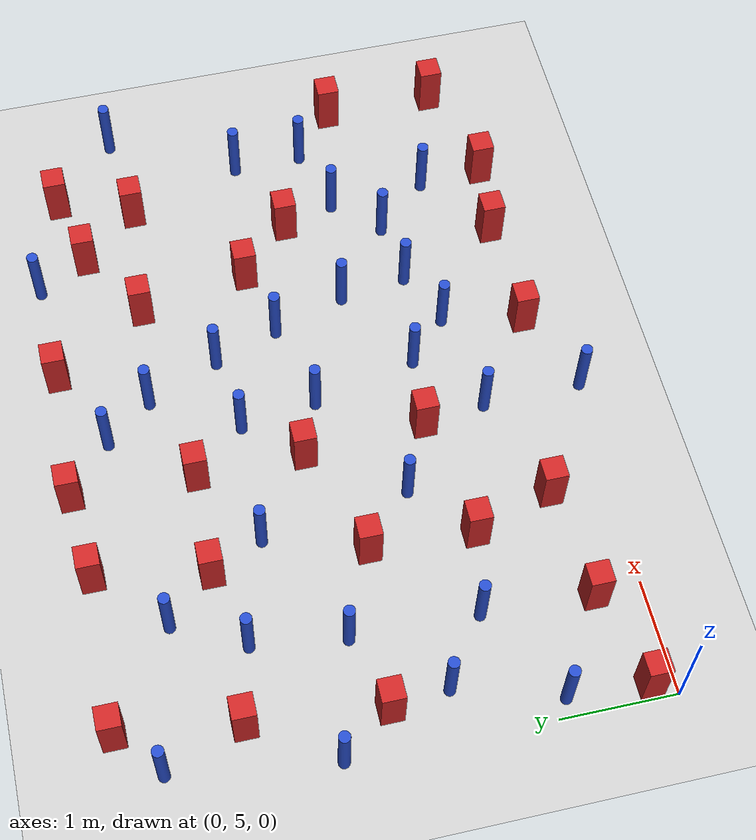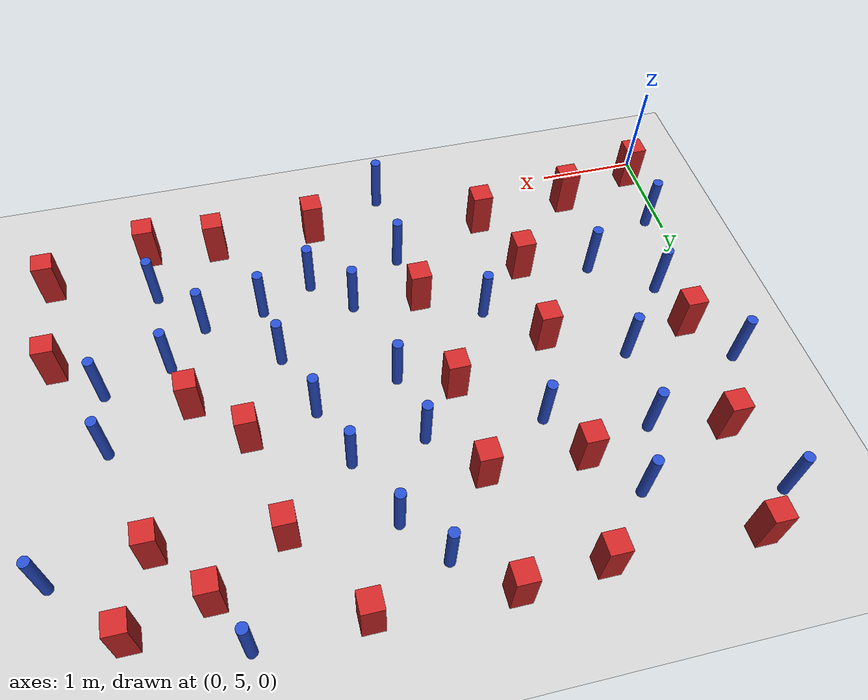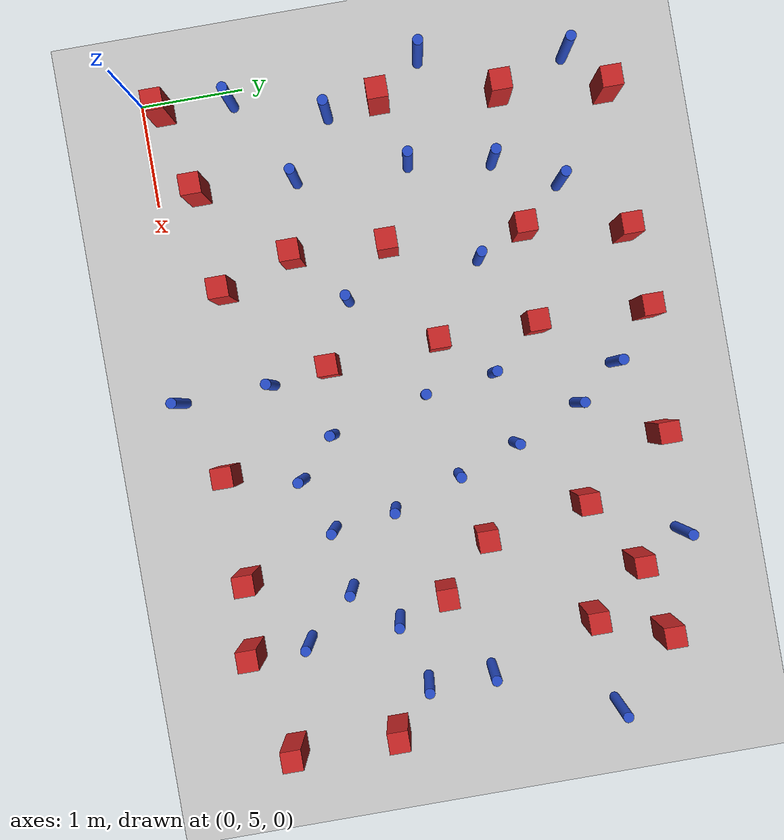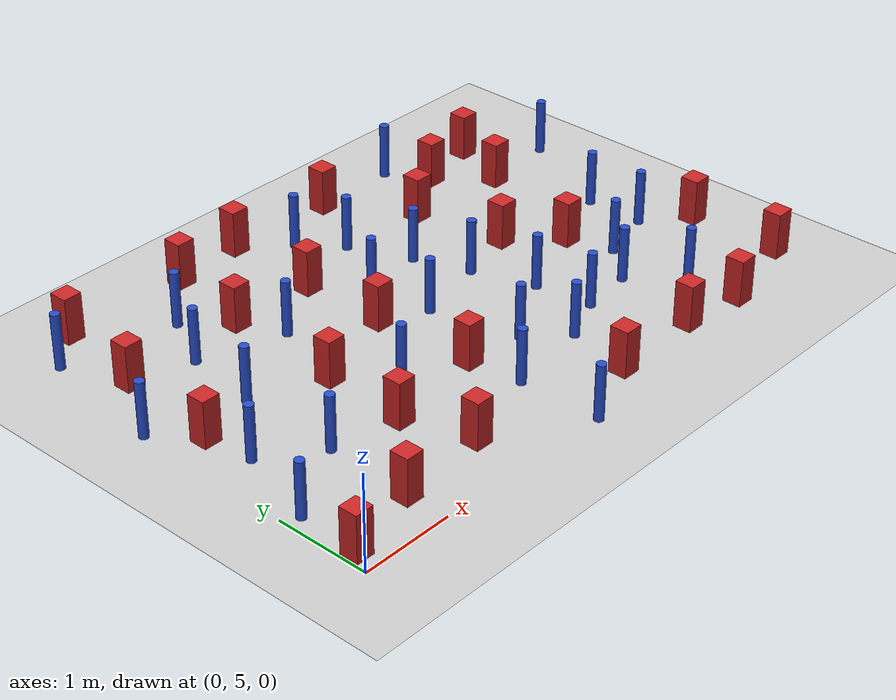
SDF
<sdf version="1.6">
 <world name="default">
  <model name="ground_plane">
   <static>1</static>
   <link name="link">
    <collision name="collision">
     <geometry><plane><normal>0 0 1</normal><size>100 100</size></plane></geometry>
     <surface><friction><ode><mu>100</mu><mu2>50</mu2></ode></friction></surface>
    </collision>
    <visual name="visual">
     <cast_shadows>0</cast_shadows>
     <geometry><plane><normal>0 0 1</normal><size>100 100</size></plane></geometry>
     <material>
      <ambient>1.0 1.0 1.0 1.0</ambient>
      <diffuse>0.8 0.8 0.8 1.0</diffuse>
      <specular>0.01 0.01 0.01 1.000000</specular>
     </material>
    </visual>
   </link>
  </model>
  <model name="pole_obstacle0">
   <static>true</static>
   <pose>2.91769429393 5.82712478604 -9.47619616065e-06 5.49618799738e-07 2.3631041406e-07 -1.55090534801e-07</pose>
   <link name="link">
    <pose>0 0 0.3 0 -0 0</pose>
    <inertial>
     <mass>1</mass>
     <inertia><ixx>0.145833</ixx><ixy>0</ixy><ixz>0</ixz><iyy>0.145833</iyy><iyz>0</iyz><izz>0.125</izz></inertia>
    </inertial>
    <collision name="collision">
     <geometry><cylinder><radius>0.05</radius><length>.6</length></cylinder></geometry>
    </collision>
    <visual name="visual">
     <geometry><cylinder><radius>0.05</radius><length>.6</length></cylinder></geometry>
     <material>
      <script><name>Gazebo/Blue</name><uri>file://media/materials/scripts/gazebo.material</uri></script>
     </material>
    </visual>
   </link>
  </model>
  <model name="square_post_obstacle2">
   <static>true</static>
   <pose>0.630227751506 9.47049307353 -6.11067671241e-07 -5.50515727128e-06 -8.79689657224e-07 2.37013304536e-05</pose>
   <link name="link">
    <pose>0 0 0.25 0 -0 0</pose>
    <inertial>
     <mass>100</mass>
     <inertia>
      <ixx>0.166667</ixx>
      <ixy>0</ixy>
      <ixz>0</ixz>
      <iyy>0.166667</iyy>
      <iyz>0</iyz>
      <izz>0.166667</izz>
     </inertia>
    </inertial>
    <collision name="collision"><geometry><box><size>.2 .2 .5</size></box></geometry></collision>
    <visual name="visual">
     <geometry><box><size>.2 .2 .5</size></box></geometry>
     <material>
      <script><name>Gazebo/Red</name><uri>file://media/materials/scripts/gazebo.material</uri></script>
     </material>
    </visual>
   </link>
  </model>
  <model name="square_post_obstacle4">
   <static>true</static>
   <pose>2.00787090122 9.43019744974 -6.11067671241e-07 -5.50515727128e-06 -8.79689657224e-07 2.37013304536e-05</pose>
   <link name="link">
    <pose>0 0 0.25 0 -0 0</pose>
    <inertial>
     <mass>100</mass>
     <inertia>
      <ixx>0.166667</ixx>
      <ixy>0</ixy>
      <ixz>0</ixz>
      <iyy>0.166667</iyy>
      <iyz>0</iyz>
      <izz>0.166667</izz>
     </inertia>
    </inertial>
    <collision name="collision"><geometry><box><size>.2 .2 .5</size></box></geometry></collision>
    <visual name="visual">
     <geometry><box><size>.2 .2 .5</size></box></geometry>
     <material>
      <script><name>Gazebo/Red</name><uri>file://media/materials/scripts/gazebo.material</uri></script>
     </material>
    </visual>
   </link>
  </model>
  <model name="square_post_obstacle6">
   <static>true</static>
   <pose>0.12175120665 5.21312354501 -6.11067671241e-07 -5.50515727128e-06 -8.79689657224e-07 2.37013304536e-05</pose>
   <link name="link">
    <pose>0 0 0.25 0 -0 0</pose>
    <inertial>
     <mass>100</mass>
     <inertia>
      <ixx>0.166667</ixx>
      <ixy>0</ixy>
      <ixz>0</ixz>
      <iyy>0.166667</iyy>
      <iyz>0</iyz>
      <izz>0.166667</izz>
     </inertia>
    </inertial>
    <collision name="collision"><geometry><box><size>.2 .2 .5</size></box></geometry></collision>
    <visual name="visual">
     <geometry><box><size>.2 .2 .5</size></box></geometry>
     <material>
      <script><name>Gazebo/Red</name><uri>file://media/materials/scripts/gazebo.material</uri></script>
     </material>
    </visual>
   </link>
  </model>
  <model name="pole_obstacle4">
   <static>true</static>
   <pose>3.25930367117 7.26666605015 -9.47619616065e-06 5.49618799738e-07 2.3631041406e-07 -1.55090534801e-07</pose>
   <link name="link">
    <pose>0 0 0.3 0 -0 0</pose>
    <inertial>
     <mass>1</mass>
     <inertia><ixx>0.145833</ixx><ixy>0</ixy><ixz>0</ixz><iyy>0.145833</iyy><iyz>0</iyz><izz>0.125</izz></inertia>
    </inertial>
    <collision name="collision">
     <geometry><cylinder><radius>0.05</radius><length>.6</length></cylinder></geometry>
    </collision>
    <visual name="visual">
     <geometry><cylinder><radius>0.05</radius><length>.6</length></cylinder></geometry>
     <material>
      <script><name>Gazebo/Blue</name><uri>file://media/materials/scripts/gazebo.material</uri></script>
     </material>
    </visual>
   </link>
  </model>
  <model name="pole_obstacle8">
   <static>true</static>
   <pose>3.57951586934 8.69045144701 -9.4761961606e-06 5.49618799729e-07 2.36310414e-07 -1.55090534824e-07</pose>
   <link name="link">
    <pose>0 0 0.3 0 -0 0</pose>
    <inertial>
     <mass>1</mass>
     <inertia><ixx>0.145833</ixx><ixy>0</ixy><ixz>0</ixz><iyy>0.145833</iyy><iyz>0</iyz><izz>0.125</izz></inertia>
    </inertial>
    <collision name="collision">
     <geometry><cylinder><radius>0.05</radius><length>.6</length></cylinder></geometry>
    </collision>
    <visual name="visual">
     <geometry><cylinder><radius>0.05</radius><length>.6</length></cylinder></geometry>
     <material>
      <script><name>Gazebo/Blue</name><uri>file://media/materials/scripts/gazebo.material</uri></script>
     </material>
    </visual>
   </link>
  </model>
  <model name="pole_obstacle15">
   <static>true</static>
   <pose>1.45612019845 8.88032884536 -9.47619616065e-06 5.49618799737e-07 2.36310414046e-07 -1.55090534809e-07</pose>
   <link name="link">
    <pose>0 0 0.3 0 -0 0</pose>
    <inertial>
     <mass>1</mass>
     <inertia><ixx>0.145833</ixx><ixy>0</ixy><ixz>0</ixz><iyy>0.145833</iyy><iyz>0</iyz><izz>0.125</izz></inertia>
    </inertial>
    <collision name="collision">
     <geometry><cylinder><radius>0.05</radius><length>.6</length></cylinder></geometry>
    </collision>
    <visual name="visual">
     <geometry><cylinder><radius>0.05</radius><length>.6</length></cylinder></geometry>
     <material>
      <script><name>Gazebo/Blue</name><uri>file://media/materials/scripts/gazebo.material</uri></script>
     </material>
    </visual>
   </link>
  </model>
  <model name="pole_obstacle17">
   <static>true</static>
   <pose>1.03093555033 7.47529446782 -9.47619616065e-06 5.49618799737e-07 2.36310414059e-07 -1.550905348e-07</pose>
   <link name="link">
    <pose>0 0 0.3 0 -0 0</pose>
    <inertial>
     <mass>1</mass>
     <inertia><ixx>0.145833</ixx><ixy>0</ixy><ixz>0</ixz><iyy>0.145833</iyy><iyz>0</iyz><izz>0.125</izz></inertia>
    </inertial>
    <collision name="collision">
     <geometry><cylinder><radius>0.05</radius><length>.6</length></cylinder></geometry>
    </collision>
    <visual name="visual">
     <geometry><cylinder><radius>0.05</radius><length>.6</length></cylinder></geometry>
     <material>
      <script><name>Gazebo/Blue</name><uri>file://media/materials/scripts/gazebo.material</uri></script>
     </material>
    </visual>
   </link>
  </model>
  <model name="pole_obstacle24">
   <static>true</static>
   <pose>5.33674350253 6.65957897446 -9.47619616065e-06 5.49618799737e-07 2.36310414037e-07 -1.55090534814e-07</pose>
   <link name="link">
    <pose>0 0 0.3 0 -0 0</pose>
    <inertial>
     <mass>1</mass>
     <inertia><ixx>0.145833</ixx><ixy>0</ixy><ixz>0</ixz><iyy>0.145833</iyy><iyz>0</iyz><izz>0.125</izz></inertia>
    </inertial>
    <collision name="collision">
     <geometry><cylinder><radius>0.05</radius><length>.6</length></cylinder></geometry>
    </collision>
    <visual name="visual">
     <geometry><cylinder><radius>0.05</radius><length>.6</length></cylinder></geometry>
     <material>
      <script><name>Gazebo/Blue</name><uri>file://media/materials/scripts/gazebo.material</uri></script>
     </material>
    </visual>
   </link>
  </model>
  <model name="pole_obstacle30">
   <static>true</static>
   <pose>2.94315081644 4.94244840659 -9.47619616065e-06 5.49618799738e-07 2.3631041406e-07 -1.55090534801e-07</pose>
   <link name="link">
    <pose>0 0 0.3 0 -0 0</pose>
    <inertial>
     <mass>1</mass>
     <inertia><ixx>0.145833</ixx><ixy>0</ixy><ixz>0</ixz><iyy>0.145833</iyy><iyz>0</iyz><izz>0.125</izz></inertia>
    </inertial>
    <collision name="collision">
     <geometry><cylinder><radius>0.05</radius><length>.6</length></cylinder></geometry>
    </collision>
    <visual name="visual">
     <geometry><cylinder><radius>0.05</radius><length>.6</length></cylinder></geometry>
     <material>
      <script><name>Gazebo/Blue</name><uri>file://media/materials/scripts/gazebo.material</uri></script>
     </material>
    </visual>
   </link>
  </model>
  <model name="pole_obstacle42">
   <static>true</static>
   <pose>2.23460327548 6.68603609018 -9.47619616065e-06 5.49618799738e-07 2.3631041406e-07 -1.55090534801e-07</pose>
   <link name="link">
    <pose>0 0 0.3 0 -0 0</pose>
    <inertial>
     <mass>1</mass>
     <inertia><ixx>0.145833</ixx><ixy>0</ixy><ixz>0</ixz><iyy>0.145833</iyy><iyz>0</iyz><izz>0.125</izz></inertia>
    </inertial>
    <collision name="collision">
     <geometry><cylinder><radius>0.05</radius><length>.6</length></cylinder></geometry>
    </collision>
    <visual name="visual">
     <geometry><cylinder><radius>0.05</radius><length>.6</length></cylinder></geometry>
     <material>
      <script><name>Gazebo/Blue</name><uri>file://media/materials/scripts/gazebo.material</uri></script>
     </material>
    </visual>
   </link>
  </model>
  <model name="square_post_obstacle45">
   <static>true</static>
   <pose>5.42357465775 5.20341456652 -6.11067671241e-07 -5.50515727128e-06 -8.79689657224e-07 2.37013304536e-05</pose>
   <link name="link">
    <pose>0 0 0.25 0 -0 0</pose>
    <inertial>
     <mass>100</mass>
     <inertia>
      <ixx>0.166667</ixx>
      <ixy>0</ixy>
      <ixz>0</ixz>
      <iyy>0.166667</iyy>
      <iyz>0</iyz>
      <izz>0.166667</izz>
     </inertia>
    </inertial>
    <collision name="collision"><geometry><box><size>.2 .2 .5</size></box></geometry></collision>
    <visual name="visual">
     <geometry><box><size>.2 .2 .5</size></box></geometry>
     <material>
      <script><name>Gazebo/Red</name><uri>file://media/materials/scripts/gazebo.material</uri></script>
     </material>
    </visual>
   </link>
  </model>
  <model name="pole_obstacle47">
   <static>true</static>
   <pose>3.16010513071 7.94690861666 -9.47619616065e-06 5.49618799738e-07 2.3631041406e-07 -1.55090534801e-07</pose>
   <link name="link">
    <pose>0 0 0.3 0 -0 0</pose>
    <inertial>
     <mass>1</mass>
     <inertia><ixx>0.145833</ixx><ixy>0</ixy><ixz>0</ixz><iyy>0.145833</iyy><iyz>0</iyz><izz>0.125</izz></inertia>
    </inertial>
    <collision name="collision">
     <geometry><cylinder><radius>0.05</radius><length>.6</length></cylinder></geometry>
    </collision>
    <visual name="visual">
     <geometry><cylinder><radius>0.05</radius><length>.6</length></cylinder></geometry>
     <material>
      <script><name>Gazebo/Blue</name><uri>file://media/materials/scripts/gazebo.material</uri></script>
     </material>
    </visual>
   </link>
  </model>
  <model name="square_post_obstacle53">
   <static>true</static>
   <pose>3.70412587344 5.26010590198 -6.11067671241e-07 -5.50515727128e-06 -8.79689657224e-07 2.37013304536e-05</pose>
   <link name="link">
    <pose>0 0 0.25 0 -0 0</pose>
    <inertial>
     <mass>100</mass>
     <inertia>
      <ixx>0.166667</ixx>
      <ixy>0</ixy>
      <ixz>0</ixz>
      <iyy>0.166667</iyy>
      <iyz>0</iyz>
      <izz>0.166667</izz>
     </inertia>
    </inertial>
    <collision name="collision"><geometry><box><size>.2 .2 .5</size></box></geometry></collision>
    <visual name="visual">
     <geometry><box><size>.2 .2 .5</size></box></geometry>
     <material>
      <script><name>Gazebo/Red</name><uri>file://media/materials/scripts/gazebo.material</uri></script>
     </material>
    </visual>
   </link>
  </model>
  <model name="square_post_obstacle55">
   <static>true</static>
   <pose>4.70554564144 7.61266817189 -6.11067671241e-07 -5.50515727128e-06 -8.79689657224e-07 2.37013304536e-05</pose>
   <link name="link">
    <pose>0 0 0.25 0 -0 0</pose>
    <inertial>
     <mass>100</mass>
     <inertia>
      <ixx>0.166667</ixx>
      <ixy>0</ixy>
      <ixz>0</ixz>
      <iyy>0.166667</iyy>
      <iyz>0</iyz>
      <izz>0.166667</izz>
     </inertia>
    </inertial>
    <collision name="collision"><geometry><box><size>.2 .2 .5</size></box></geometry></collision>
    <visual name="visual">
     <geometry><box><size>.2 .2 .5</size></box></geometry>
     <material>
      <script><name>Gazebo/Red</name><uri>file://media/materials/scripts/gazebo.material</uri></script>
     </material>
    </visual>
   </link>
  </model>
  <model name="square_post_obstacle60">
   <static>true</static>
   <pose>1.76581448532 7.14368990136 -6.11067671241e-07 -5.50515727128e-06 -8.79689657224e-07 2.37013304536e-05</pose>
   <link name="link">
    <pose>0 0 0.25 0 -0 0</pose>
    <inertial>
     <mass>100</mass>
     <inertia>
      <ixx>0.166667</ixx>
      <ixy>0</ixy>
      <ixz>0</ixz>
      <iyy>0.166667</iyy>
      <iyz>0</iyz>
      <izz>0.166667</izz>
     </inertia>
    </inertial>
    <collision name="collision"><geometry><box><size>.2 .2 .5</size></box></geometry></collision>
    <visual name="visual">
     <geometry><box><size>.2 .2 .5</size></box></geometry>
     <material>
      <script><name>Gazebo/Red</name><uri>file://media/materials/scripts/gazebo.material</uri></script>
     </material>
    </visual>
   </link>
  </model>
  <model name="pole_obstacle58">
   <static>true</static>
   <pose>4.9488277029 9.46427125604 -9.47619616065e-06 5.49618799737e-07 2.36310414065e-07 -1.55090534796e-07</pose>
   <link name="link">
    <pose>0 0 0.3 0 -0 0</pose>
    <inertial>
     <mass>1</mass>
     <inertia><ixx>0.145833</ixx><ixy>0</ixy><ixz>0</ixz><iyy>0.145833</iyy><iyz>0</iyz><izz>0.125</izz></inertia>
    </inertial>
    <collision name="collision">
     <geometry><cylinder><radius>0.05</radius><length>.6</length></cylinder></geometry>
    </collision>
    <visual name="visual">
     <geometry><cylinder><radius>0.05</radius><length>.6</length></cylinder></geometry>
     <material>
      <script><name>Gazebo/Blue</name><uri>file://media/materials/scripts/gazebo.material</uri></script>
     </material>
    </visual>
   </link>
  </model>
  <model name="pole_obstacle60">
   <static>true</static>
   <pose>4.37932805564 6.18865254401 -9.47619616065e-06 5.49618799737e-07 2.36310414037e-07 -1.55090534814e-07</pose>
   <link name="link">
    <pose>0 0 0.3 0 -0 0</pose>
    <inertial>
     <mass>1</mass>
     <inertia><ixx>0.145833</ixx><ixy>0</ixy><ixz>0</ixz><iyy>0.145833</iyy><iyz>0</iyz><izz>0.125</izz></inertia>
    </inertial>
    <collision name="collision">
     <geometry><cylinder><radius>0.05</radius><length>.6</length></cylinder></geometry>
    </collision>
    <visual name="visual">
     <geometry><cylinder><radius>0.05</radius><length>.6</length></cylinder></geometry>
     <material>
      <script><name>Gazebo/Blue</name><uri>file://media/materials/scripts/gazebo.material</uri></script>
     </material>
    </visual>
   </link>
  </model>
  <model name="square_post_obstacle63">
   <static>true</static>
   <pose>1.94699125958 5.51778736493 -6.11067671241e-07 -5.50515727128e-06 -8.79689657224e-07 2.37013304536e-05</pose>
   <link name="link">
    <pose>0 0 0.25 0 -0 0</pose>
    <inertial>
     <mass>100</mass>
     <inertia>
      <ixx>0.166667</ixx>
      <ixy>0</ixy>
      <ixz>0</ixz>
      <iyy>0.166667</iyy>
      <iyz>0</iyz>
      <izz>0.166667</izz>
     </inertia>
    </inertial>
    <collision name="collision"><geometry><box><size>.2 .2 .5</size></box></geometry></collision>
    <visual name="visual">
     <geometry><box><size>.2 .2 .5</size></box></geometry>
     <material>
      <script><name>Gazebo/Red</name><uri>file://media/materials/scripts/gazebo.material</uri></script>
     </material>
    </visual>
   </link>
  </model>
  <model name="pole_obstacle61">
   <static>true</static>
   <pose>3.85793728879 8.03946962411 -9.47619616065e-06 5.49618799737e-07 2.3631041406e-07 -1.55090534799e-07</pose>
   <link name="link">
    <pose>0 0 0.3 0 -0 0</pose>
    <inertial>
     <mass>1</mass>
     <inertia><ixx>0.145833</ixx><ixy>0</ixy><ixz>0</ixz><iyy>0.145833</iyy><iyz>0</iyz><izz>0.125</izz></inertia>
    </inertial>
    <collision name="collision">
     <geometry><cylinder><radius>0.05</radius><length>.6</length></cylinder></geometry>
    </collision>
    <visual name="visual">
     <geometry><cylinder><radius>0.05</radius><length>.6</length></cylinder></geometry>
     <material>
      <script><name>Gazebo/Blue</name><uri>file://media/materials/scripts/gazebo.material</uri></script>
     </material>
    </visual>
   </link>
  </model>
  <model name="square_post_obstacle71">
   <static>true</static>
   <pose>4.5241737676 8.5995842575 -6.11067671241e-07 -5.50515727128e-06 -8.79689657224e-07 2.37013304536e-05</pose>
   <link name="link">
    <pose>0 0 0.25 0 -0 0</pose>
    <inertial>
     <mass>100</mass>
     <inertia>
      <ixx>0.166667</ixx>
      <ixy>0</ixy>
      <ixz>0</ixz>
      <iyy>0.166667</iyy>
      <iyz>0</iyz>
      <izz>0.166667</izz>
     </inertia>
    </inertial>
    <collision name="collision"><geometry><box><size>.2 .2 .5</size></box></geometry></collision>
    <visual name="visual">
     <geometry><box><size>.2 .2 .5</size></box></geometry>
     <material>
      <script><name>Gazebo/Red</name><uri>file://media/materials/scripts/gazebo.material</uri></script>
     </material>
    </visual>
   </link>
  </model>
  <model name="pole_obstacle76">
   <static>true</static>
   <pose>0.0378054243625 7.74169965246 -9.47619616065e-06 5.49618799738e-07 2.36310414062e-07 -1.550905348e-07</pose>
   <link name="link">
    <pose>0 0 0.3 0 -0 0</pose>
    <inertial>
     <mass>1</mass>
     <inertia><ixx>0.145833</ixx><ixy>0</ixy><ixz>0</ixz><iyy>0.145833</iyy><iyz>0</iyz><izz>0.125</izz></inertia>
    </inertial>
    <collision name="collision">
     <geometry><cylinder><radius>0.05</radius><length>.6</length></cylinder></geometry>
    </collision>
    <visual name="visual">
     <geometry><cylinder><radius>0.05</radius><length>.6</length></cylinder></geometry>
     <material>
      <script><name>Gazebo/Blue</name><uri>file://media/materials/scripts/gazebo.material</uri></script>
     </material>
    </visual>
   </link>
  </model>
  <model name="pole_obstacle80">
   <static>true</static>
   <pose>5.97340619824 6.83240980367 -9.47619616065e-06 5.49618799737e-07 2.36310414037e-07 -1.55090534814e-07</pose>
   <link name="link">
    <pose>0 0 0.3 0 -0 0</pose>
    <inertial>
     <mass>1</mass>
     <inertia><ixx>0.145833</ixx><ixy>0</ixy><ixz>0</ixz><iyy>0.145833</iyy><iyz>0</iyz><izz>0.125</izz></inertia>
    </inertial>
    <collision name="collision">
     <geometry><cylinder><radius>0.05</radius><length>.6</length></cylinder></geometry>
    </collision>
    <visual name="visual">
     <geometry><cylinder><radius>0.05</radius><length>.6</length></cylinder></geometry>
     <material>
      <script><name>Gazebo/Blue</name><uri>file://media/materials/scripts/gazebo.material</uri></script>
     </material>
    </visual>
   </link>
  </model>
  <model name="square_post_obstacle81">
   <static>true</static>
   <pose>1.71569662238 6.22932964165 -6.11067671241e-07 -5.50515727128e-06 -8.79689657224e-07 2.37013304536e-05</pose>
   <link name="link">
    <pose>0 0 0.25 0 -0 0</pose>
    <inertial>
     <mass>100</mass>
     <inertia>
      <ixx>0.166667</ixx>
      <ixy>0</ixy>
      <ixz>0</ixz>
      <iyy>0.166667</iyy>
      <iyz>0</iyz>
      <izz>0.166667</izz>
     </inertia>
    </inertial>
    <collision name="collision"><geometry><box><size>.2 .2 .5</size></box></geometry></collision>
    <visual name="visual">
     <geometry><box><size>.2 .2 .5</size></box></geometry>
     <material>
      <script><name>Gazebo/Red</name><uri>file://media/materials/scripts/gazebo.material</uri></script>
     </material>
    </visual>
   </link>
  </model>
  <model name="pole_obstacle90">
   <static>true</static>
   <pose>2.05214610935 7.99212235799 -9.47619616065e-06 5.49618799737e-07 2.3631041406e-07 -1.55090534802e-07</pose>
   <link name="link">
    <pose>0 0 0.3 0 -0 0</pose>
    <inertial>
     <mass>1</mass>
     <inertia><ixx>0.145833</ixx><ixy>0</ixy><ixz>0</ixz><iyy>0.145833</iyy><iyz>0</iyz><izz>0.125</izz></inertia>
    </inertial>
    <collision name="collision">
     <geometry><cylinder><radius>0.05</radius><length>.6</length></cylinder></geometry>
    </collision>
    <visual name="visual">
     <geometry><cylinder><radius>0.05</radius><length>.6</length></cylinder></geometry>
     <material>
      <script><name>Gazebo/Blue</name><uri>file://media/materials/scripts/gazebo.material</uri></script>
     </material>
    </visual>
   </link>
  </model>
  <model name="square_post_obstacle85">
   <static>true</static>
   <pose>6.40943387097 5.45539145126 -6.11067671241e-07 -5.50515727128e-06 -8.79689657224e-07 2.37013304536e-05</pose>
   <link name="link">
    <pose>0 0 0.25 0 -0 0</pose>
    <inertial>
     <mass>100</mass>
     <inertia>
      <ixx>0.166667</ixx>
      <ixy>0</ixy>
      <ixz>0</ixz>
      <iyy>0.166667</iyy>
      <iyz>0</iyz>
      <izz>0.166667</izz>
     </inertia>
    </inertial>
    <collision name="collision"><geometry><box><size>.2 .2 .5</size></box></geometry></collision>
    <visual name="visual">
     <geometry><box><size>.2 .2 .5</size></box></geometry>
     <material>
      <script><name>Gazebo/Red</name><uri>file://media/materials/scripts/gazebo.material</uri></script>
     </material>
    </visual>
   </link>
  </model>
  <model name="pole_obstacle100">
   <static>true</static>
   <pose>4.29037838905 6.79646147726 -9.47619616065e-06 5.49618799737e-07 2.36310414037e-07 -1.55090534814e-07</pose>
   <link name="link">
    <pose>0 0 0.3 0 -0 0</pose>
    <inertial>
     <mass>1</mass>
     <inertia><ixx>0.145833</ixx><ixy>0</ixy><ixz>0</ixz><iyy>0.145833</iyy><iyz>0</iyz><izz>0.125</izz></inertia>
    </inertial>
    <collision name="collision">
     <geometry><cylinder><radius>0.05</radius><length>.6</length></cylinder></geometry>
    </collision>
    <visual name="visual">
     <geometry><cylinder><radius>0.05</radius><length>.6</length></cylinder></geometry>
     <material>
      <script><name>Gazebo/Blue</name><uri>file://media/materials/scripts/gazebo.material</uri></script>
     </material>
    </visual>
   </link>
  </model>
  <model name="square_post_obstacle88">
   <static>true</static>
   <pose>0.953473857642 5.42802426537 -6.11067671241e-07 -5.50515727128e-06 -8.79689657224e-07 2.37013304536e-05</pose>
   <link name="link">
    <pose>0 0 0.25 0 -0 0</pose>
    <inertial>
     <mass>100</mass>
     <inertia>
      <ixx>0.166667</ixx>
      <ixy>0</ixy>
      <ixz>0</ixz>
      <iyy>0.166667</iyy>
      <iyz>0</iyz>
      <izz>0.166667</izz>
     </inertia>
    </inertial>
    <collision name="collision"><geometry><box><size>.2 .2 .5</size></box></geometry></collision>
    <visual name="visual">
     <geometry><box><size>.2 .2 .5</size></box></geometry>
     <material>
      <script><name>Gazebo/Red</name><uri>file://media/materials/scripts/gazebo.material</uri></script>
     </material>
    </visual>
   </link>
  </model>
  <model name="pole_obstacle102">
   <static>true</static>
   <pose>1.00460475208 6.37848918765 -9.47619616065e-06 5.49618799737e-07 2.36310414059e-07 -1.550905348e-07</pose>
   <link name="link">
    <pose>0 0 0.3 0 -0 0</pose>
    <inertial>
     <mass>1</mass>
     <inertia><ixx>0.145833</ixx><ixy>0</ixy><ixz>0</ixz><iyy>0.145833</iyy><iyz>0</iyz><izz>0.125</izz></inertia>
    </inertial>
    <collision name="collision">
     <geometry><cylinder><radius>0.05</radius><length>.6</length></cylinder></geometry>
    </collision>
    <visual name="visual">
     <geometry><cylinder><radius>0.05</radius><length>.6</length></cylinder></geometry>
     <material>
      <script><name>Gazebo/Blue</name><uri>file://media/materials/scripts/gazebo.material</uri></script>
     </material>
    </visual>
   </link>
  </model>
  <model name="square_post_obstacle91">
   <static>true</static>
   <pose>0.486032766431 8.4466835165 -6.11067671241e-07 -5.50515727128e-06 -8.79689657224e-07 2.37013304536e-05</pose>
   <link name="link">
    <pose>0 0 0.25 0 -0 0</pose>
    <inertial>
     <mass>100</mass>
     <inertia>
      <ixx>0.166667</ixx>
      <ixy>0</ixy>
      <ixz>0</ixz>
      <iyy>0.166667</iyy>
      <iyz>0</iyz>
      <izz>0.166667</izz>
     </inertia>
    </inertial>
    <collision name="collision"><geometry><box><size>.2 .2 .5</size></box></geometry></collision>
    <visual name="visual">
     <geometry><box><size>.2 .2 .5</size></box></geometry>
     <material>
      <script><name>Gazebo/Red</name><uri>file://media/materials/scripts/gazebo.material</uri></script>
     </material>
    </visual>
   </link>
  </model>
  <model name="pole_obstacle103">
   <static>true</static>
   <pose>6.49758450915 8.59253667656 -9.47619616065e-06 5.49618799737e-07 2.36310414065e-07 -1.55090534796e-07</pose>
   <link name="link">
    <pose>0 0 0.3 0 -0 0</pose>
    <inertial>
     <mass>1</mass>
     <inertia><ixx>0.145833</ixx><ixy>0</ixy><ixz>0</ixz><iyy>0.145833</iyy><iyz>0</iyz><izz>0.125</izz></inertia>
    </inertial>
    <collision name="collision">
     <geometry><cylinder><radius>0.05</radius><length>.6</length></cylinder></geometry>
    </collision>
    <visual name="visual">
     <geometry><cylinder><radius>0.05</radius><length>.6</length></cylinder></geometry>
     <material>
      <script><name>Gazebo/Blue</name><uri>file://media/materials/scripts/gazebo.material</uri></script>
     </material>
    </visual>
   </link>
  </model>
  <model name="pole_obstacle108">
   <static>true</static>
   <pose>0.160354904789 5.894334355 -9.47619616065e-06 5.49618799737e-07 2.36310414061e-07 -1.55090534801e-07</pose>
   <link name="link">
    <pose>0 0 0.3 0 -0 0</pose>
    <inertial>
     <mass>1</mass>
     <inertia><ixx>0.145833</ixx><ixy>0</ixy><ixz>0</ixz><iyy>0.145833</iyy><iyz>0</iyz><izz>0.125</izz></inertia>
    </inertial>
    <collision name="collision">
     <geometry><cylinder><radius>0.05</radius><length>.6</length></cylinder></geometry>
    </collision>
    <visual name="visual">
     <geometry><cylinder><radius>0.05</radius><length>.6</length></cylinder></geometry>
     <material>
      <script><name>Gazebo/Blue</name><uri>file://media/materials/scripts/gazebo.material</uri></script>
     </material>
    </visual>
   </link>
  </model>
  <model name="square_post_obstacle100">
   <static>true</static>
   <pose>2.75791952113 7.47696360584 -6.11067671241e-07 -5.50515727128e-06 -8.79689657224e-07 2.37013304536e-05</pose>
   <link name="link">
    <pose>0 0 0.25 0 -0 0</pose>
    <inertial>
     <mass>100</mass>
     <inertia>
      <ixx>0.166667</ixx>
      <ixy>0</ixy>
      <ixz>0</ixz>
      <iyy>0.166667</iyy>
      <iyz>0</iyz>
      <izz>0.166667</izz>
     </inertia>
    </inertial>
    <collision name="collision"><geometry><box><size>.2 .2 .5</size></box></geometry></collision>
    <visual name="visual">
     <geometry><box><size>.2 .2 .5</size></box></geometry>
     <material>
      <script><name>Gazebo/Red</name><uri>file://media/materials/scripts/gazebo.material</uri></script>
     </material>
    </visual>
   </link>
  </model>
  <model name="square_post_obstacle102">
   <static>true</static>
   <pose>2.75223802533 8.41889317793 -6.11067671241e-07 -5.50515727128e-06 -8.79689657224e-07 2.37013304536e-05</pose>
   <link name="link">
    <pose>0 0 0.25 0 -0 0</pose>
    <inertial>
     <mass>100</mass>
     <inertia>
      <ixx>0.166667</ixx>
      <ixy>0</ixy>
      <ixz>0</ixz>
      <iyy>0.166667</iyy>
      <iyz>0</iyz>
      <izz>0.166667</izz>
     </inertia>
    </inertial>
    <collision name="collision"><geometry><box><size>.2 .2 .5</size></box></geometry></collision>
    <visual name="visual">
     <geometry><box><size>.2 .2 .5</size></box></geometry>
     <material>
      <script><name>Gazebo/Red</name><uri>file://media/materials/scripts/gazebo.material</uri></script>
     </material>
    </visual>
   </link>
  </model>
  <model name="pole_obstacle117">
   <static>true</static>
   <pose>5.96323165575 7.458587711 -9.47619616065e-06 5.49618799737e-07 2.36310414037e-07 -1.55090534814e-07</pose>
   <link name="link">
    <pose>0 0 0.3 0 -0 0</pose>
    <inertial>
     <mass>1</mass>
     <inertia><ixx>0.145833</ixx><ixy>0</ixy><ixz>0</ixz><iyy>0.145833</iyy><iyz>0</iyz><izz>0.125</izz></inertia>
    </inertial>
    <collision name="collision">
     <geometry><cylinder><radius>0.05</radius><length>.6</length></cylinder></geometry>
    </collision>
    <visual name="visual">
     <geometry><cylinder><radius>0.05</radius><length>.6</length></cylinder></geometry>
     <material>
      <script><name>Gazebo/Blue</name><uri>file://media/materials/scripts/gazebo.material</uri></script>
     </material>
    </visual>
   </link>
  </model>
  <model name="pole_obstacle125">
   <static>true</static>
   <pose>4.06832492618 7.45514464207 -9.47619616065e-06 5.49618799737e-07 2.36310414037e-07 -1.55090534814e-07</pose>
   <link name="link">
    <pose>0 0 0.3 0 -0 0</pose>
    <inertial>
     <mass>1</mass>
     <inertia><ixx>0.145833</ixx><ixy>0</ixy><ixz>0</ixz><iyy>0.145833</iyy><iyz>0</iyz><izz>0.125</izz></inertia>
    </inertial>
    <collision name="collision">
     <geometry><cylinder><radius>0.05</radius><length>.6</length></cylinder></geometry>
    </collision>
    <visual name="visual">
     <geometry><cylinder><radius>0.05</radius><length>.6</length></cylinder></geometry>
     <material>
      <script><name>Gazebo/Blue</name><uri>file://media/materials/scripts/gazebo.material</uri></script>
     </material>
    </visual>
   </link>
  </model>
  <model name="pole_obstacle134">
   <static>true</static>
   <pose>3.48693687885 6.32661480105 -9.47619616065e-06 5.49618799738e-07 2.3631041406e-07 -1.55090534801e-07</pose>
   <link name="link">
    <pose>0 0 0.3 0 -0 0</pose>
    <inertial>
     <mass>1</mass>
     <inertia><ixx>0.145833</ixx><ixy>0</ixy><ixz>0</ixz><iyy>0.145833</iyy><iyz>0</iyz><izz>0.125</izz></inertia>
    </inertial>
    <collision name="collision">
     <geometry><cylinder><radius>0.05</radius><length>.6</length></cylinder></geometry>
    </collision>
    <visual name="visual">
     <geometry><cylinder><radius>0.05</radius><length>.6</length></cylinder></geometry>
     <material>
      <script><name>Gazebo/Blue</name><uri>file://media/materials/scripts/gazebo.material</uri></script>
     </material>
    </visual>
   </link>
  </model>
  <model name="pole_obstacle141">
   <static>true</static>
   <pose>5.39700931592 5.77411427118 -9.47619616065e-06 5.49618799737e-07 2.36310414037e-07 -1.55090534814e-07</pose>
   <link name="link">
    <pose>0 0 0.3 0 -0 0</pose>
    <inertial>
     <mass>1</mass>
     <inertia><ixx>0.145833</ixx><ixy>0</ixy><ixz>0</ixz><iyy>0.145833</iyy><iyz>0</iyz><izz>0.125</izz></inertia>
    </inertial>
    <collision name="collision">
     <geometry><cylinder><radius>0.05</radius><length>.6</length></cylinder></geometry>
    </collision>
    <visual name="visual">
     <geometry><cylinder><radius>0.05</radius><length>.6</length></cylinder></geometry>
     <material>
      <script><name>Gazebo/Blue</name><uri>file://media/materials/scripts/gazebo.material</uri></script>
     </material>
    </visual>
   </link>
  </model>
  <model name="square_post_obstacle129">
   <static>true</static>
   <pose>5.87883953138 9.16925761026 -6.11067671241e-07 -5.50515727128e-06 -8.79689657224e-07 2.37013304536e-05</pose>
   <link name="link">
    <pose>0 0 0.25 0 -0 0</pose>
    <inertial>
     <mass>100</mass>
     <inertia>
      <ixx>0.166667</ixx>
      <ixy>0</ixy>
      <ixz>0</ixz>
      <iyy>0.166667</iyy>
      <iyz>0</iyz>
      <izz>0.166667</izz>
     </inertia>
    </inertial>
    <collision name="collision"><geometry><box><size>.2 .2 .5</size></box></geometry></collision>
    <visual name="visual">
     <geometry><box><size>.2 .2 .5</size></box></geometry>
     <material>
      <script><name>Gazebo/Red</name><uri>file://media/materials/scripts/gazebo.material</uri></script>
     </material>
    </visual>
   </link>
  </model>
  <model name="pole_obstacle154">
   <static>true</static>
   <pose>1.14614121621 8.28104286329 -9.47619616065e-06 5.49618799737e-07 2.36310414046e-07 -1.55090534809e-07</pose>
   <link name="link">
    <pose>0 0 0.3 0 -0 0</pose>
    <inertial>
     <mass>1</mass>
     <inertia><ixx>0.145833</ixx><ixy>0</ixy><ixz>0</ixz><iyy>0.145833</iyy><iyz>0</iyz><izz>0.125</izz></inertia>
    </inertial>
    <collision name="collision">
     <geometry><cylinder><radius>0.05</radius><length>.6</length></cylinder></geometry>
    </collision>
    <visual name="visual">
     <geometry><cylinder><radius>0.05</radius><length>.6</length></cylinder></geometry>
     <material>
      <script><name>Gazebo/Blue</name><uri>file://media/materials/scripts/gazebo.material</uri></script>
     </material>
    </visual>
   </link>
  </model>
  <model name="square_post_obstacle147">
   <static>true</static>
   <pose>5.62960980049 8.49838711589 -6.11067671241e-07 -5.50515727128e-06 -8.79689657224e-07 2.37013304536e-05</pose>
   <link name="link">
    <pose>0 0 0.25 0 -0 0</pose>
    <inertial>
     <mass>100</mass>
     <inertia>
      <ixx>0.166667</ixx>
      <ixy>0</ixy>
      <ixz>0</ixz>
      <iyy>0.166667</iyy>
      <iyz>0</iyz>
      <izz>0.166667</izz>
     </inertia>
    </inertial>
    <collision name="collision"><geometry><box><size>.2 .2 .5</size></box></geometry></collision>
    <visual name="visual">
     <geometry><box><size>.2 .2 .5</size></box></geometry>
     <material>
      <script><name>Gazebo/Red</name><uri>file://media/materials/scripts/gazebo.material</uri></script>
     </material>
    </visual>
   </link>
  </model>
  <model name="pole_obstacle161">
   <static>true</static>
   <pose>0.433171166263 6.78472551144 -9.47619616065e-06 5.49618799737e-07 2.36310414065e-07 -1.55090534796e-07</pose>
   <link name="link">
    <pose>0 0 0.3 0 -0 0</pose>
    <inertial>
     <mass>1</mass>
     <inertia><ixx>0.145833</ixx><ixy>0</ixy><ixz>0</ixz><iyy>0.145833</iyy><iyz>0</iyz><izz>0.125</izz></inertia>
    </inertial>
    <collision name="collision">
     <geometry><cylinder><radius>0.05</radius><length>.6</length></cylinder></geometry>
    </collision>
    <visual name="visual">
     <geometry><cylinder><radius>0.05</radius><length>.6</length></cylinder></geometry>
     <material>
      <script><name>Gazebo/Blue</name><uri>file://media/materials/scripts/gazebo.material</uri></script>
     </material>
    </visual>
   </link>
  </model>
  <model name="pole_obstacle163">
   <static>true</static>
   <pose>3.86327140313 5.96629418907 -9.47619616065e-06 5.49618799738e-07 2.3631041406e-07 -1.55090534801e-07</pose>
   <link name="link">
    <pose>0 0 0.3 0 -0 0</pose>
    <inertial>
     <mass>1</mass>
     <inertia><ixx>0.145833</ixx><ixy>0</ixy><ixz>0</ixz><iyy>0.145833</iyy><iyz>0</iyz><izz>0.125</izz></inertia>
    </inertial>
    <collision name="collision">
     <geometry><cylinder><radius>0.05</radius><length>.6</length></cylinder></geometry>
    </collision>
    <visual name="visual">
     <geometry><cylinder><radius>0.05</radius><length>.6</length></cylinder></geometry>
     <material>
      <script><name>Gazebo/Blue</name><uri>file://media/materials/scripts/gazebo.material</uri></script>
     </material>
    </visual>
   </link>
  </model>
  <model name="pole_obstacle172">
   <static>true</static>
   <pose>4.96875565711 6.26033100886 -9.47619616065e-06 5.49618799737e-07 2.36310414037e-07 -1.55090534814e-07</pose>
   <link name="link">
    <pose>0 0 0.3 0 -0 0</pose>
    <inertial>
     <mass>1</mass>
     <inertia><ixx>0.145833</ixx><ixy>0</ixy><ixz>0</ixz><iyy>0.145833</iyy><iyz>0</iyz><izz>0.125</izz></inertia>
    </inertial>
    <collision name="collision">
     <geometry><cylinder><radius>0.05</radius><length>.6</length></cylinder></geometry>
    </collision>
    <visual name="visual">
     <geometry><cylinder><radius>0.05</radius><length>.6</length></cylinder></geometry>
     <material>
      <script><name>Gazebo/Blue</name><uri>file://media/materials/scripts/gazebo.material</uri></script>
     </material>
    </visual>
   </link>
  </model>
  <model name="pole_obstacle173">
   <static>true</static>
   <pose>0.238152550114 9.13464970465 -9.47619616065e-06 5.49618799738e-07 2.36310414036e-07 -1.55090534814e-07</pose>
   <link name="link">
    <pose>0 0 0.3 0 -0 0</pose>
    <inertial>
     <mass>1</mass>
     <inertia><ixx>0.145833</ixx><ixy>0</ixy><ixz>0</ixz><iyy>0.145833</iyy><iyz>0</iyz><izz>0.125</izz></inertia>
    </inertial>
    <collision name="collision">
     <geometry><cylinder><radius>0.05</radius><length>.6</length></cylinder></geometry>
    </collision>
    <visual name="visual">
     <geometry><cylinder><radius>0.05</radius><length>.6</length></cylinder></geometry>
     <material>
      <script><name>Gazebo/Blue</name><uri>file://media/materials/scripts/gazebo.material</uri></script>
     </material>
    </visual>
   </link>
  </model>
  <model name="pole_obstacle184">
   <static>true</static>
   <pose>3.25100917883 9.10603028824 -9.4761961606e-06 5.49618799729e-07 2.36310414e-07 -1.55090534824e-07</pose>
   <link name="link">
    <pose>0 0 0.3 0 -0 0</pose>
    <inertial>
     <mass>1</mass>
     <inertia><ixx>0.145833</ixx><ixy>0</ixy><ixz>0</ixz><iyy>0.145833</iyy><iyz>0</iyz><izz>0.125</izz></inertia>
    </inertial>
    <collision name="collision">
     <geometry><cylinder><radius>0.05</radius><length>.6</length></cylinder></geometry>
    </collision>
    <visual name="visual">
     <geometry><cylinder><radius>0.05</radius><length>.6</length></cylinder></geometry>
     <material>
      <script><name>Gazebo/Blue</name><uri>file://media/materials/scripts/gazebo.material</uri></script>
     </material>
    </visual>
   </link>
  </model>
  <model name="square_post_obstacle178">
   <static>true</static>
   <pose>5.18610064263 9.00974233647 -6.11067671241e-07 -5.50515727128e-06 -8.79689657224e-07 2.37013304536e-05</pose>
   <link name="link">
    <pose>0 0 0.25 0 -0 0</pose>
    <inertial>
     <mass>100</mass>
     <inertia>
      <ixx>0.166667</ixx>
      <ixy>0</ixy>
      <ixz>0</ixz>
      <iyy>0.166667</iyy>
      <iyz>0</iyz>
      <izz>0.166667</izz>
     </inertia>
    </inertial>
    <collision name="collision"><geometry><box><size>.2 .2 .5</size></box></geometry></collision>
    <visual name="visual">
     <geometry><box><size>.2 .2 .5</size></box></geometry>
     <material>
      <script><name>Gazebo/Red</name><uri>file://media/materials/scripts/gazebo.material</uri></script>
     </material>
    </visual>
   </link>
  </model>
  <model name="square_post_obstacle186">
   <static>true</static>
   <pose>2.78785255773 9.49328284033 -6.11067671241e-07 -5.50515727128e-06 -8.79689657224e-07 2.37013304536e-05</pose>
   <link name="link">
    <pose>0 0 0.25 0 -0 0</pose>
    <inertial>
     <mass>100</mass>
     <inertia>
      <ixx>0.166667</ixx>
      <ixy>0</ixy>
      <ixz>0</ixz>
      <iyy>0.166667</iyy>
      <iyz>0</iyz>
      <izz>0.166667</izz>
     </inertia>
    </inertial>
    <collision name="collision"><geometry><box><size>.2 .2 .5</size></box></geometry></collision>
    <visual name="visual">
     <geometry><box><size>.2 .2 .5</size></box></geometry>
     <material>
      <script><name>Gazebo/Red</name><uri>file://media/materials/scripts/gazebo.material</uri></script>
     </material>
    </visual>
   </link>
  </model>
  <model name="square_post_obstacle187">
   <static>true</static>
   <pose>5.17518726413 7.14502943877 -6.11067671241e-07 -5.50515727128e-06 -8.79689657224e-07 2.37013304536e-05</pose>
   <link name="link">
    <pose>0 0 0.25 0 -0 0</pose>
    <inertial>
     <mass>100</mass>
     <inertia>
      <ixx>0.166667</ixx>
      <ixy>0</ixy>
      <ixz>0</ixz>
      <iyy>0.166667</iyy>
      <iyz>0</iyz>
      <izz>0.166667</izz>
     </inertia>
    </inertial>
    <collision name="collision"><geometry><box><size>.2 .2 .5</size></box></geometry></collision>
    <visual name="visual">
     <geometry><box><size>.2 .2 .5</size></box></geometry>
     <material>
      <script><name>Gazebo/Red</name><uri>file://media/materials/scripts/gazebo.material</uri></script>
     </material>
    </visual>
   </link>
  </model>
  <model name="square_post_obstacle189">
   <static>true</static>
   <pose>3.99132967739 9.43975391694 -6.11067671241e-07 -5.50515727128e-06 -8.79689657224e-07 2.37013304536e-05</pose>
   <link name="link">
    <pose>0 0 0.25 0 -0 0</pose>
    <inertial>
     <mass>100</mass>
     <inertia>
      <ixx>0.166667</ixx>
      <ixy>0</ixy>
      <ixz>0</ixz>
      <iyy>0.166667</iyy>
      <iyz>0</iyz>
      <izz>0.166667</izz>
     </inertia>
    </inertial>
    <collision name="collision"><geometry><box><size>.2 .2 .5</size></box></geometry></collision>
    <visual name="visual">
     <geometry><box><size>.2 .2 .5</size></box></geometry>
     <material>
      <script><name>Gazebo/Red</name><uri>file://media/materials/scripts/gazebo.material</uri></script>
     </material>
    </visual>
   </link>
  </model>
  <model name="square_post_obstacle195">
   <static>true</static>
   <pose>1.82882908648 8.45768314291 -6.11067671241e-07 -5.50515727128e-06 -8.79689657224e-07 2.37013304536e-05</pose>
   <link name="link">
    <pose>0 0 0.25 0 -0 0</pose>
    <inertial>
     <mass>100</mass>
     <inertia>
      <ixx>0.166667</ixx>
      <ixy>0</ixy>
      <ixz>0</ixz>
      <iyy>0.166667</iyy>
      <iyz>0</iyz>
      <izz>0.166667</izz>
     </inertia>
    </inertial>
    <collision name="collision"><geometry><box><size>.2 .2 .5</size></box></geometry></collision>
    <visual name="visual">
     <geometry><box><size>.2 .2 .5</size></box></geometry>
     <material>
      <script><name>Gazebo/Red</name><uri>file://media/materials/scripts/gazebo.material</uri></script>
     </material>
    </visual>
   </link>
  </model>
  <model name="square_post_obstacle211">
   <static>true</static>
   <pose>6.40520350605 6.46656762203 -6.11067671241e-07 -5.50515727128e-06 -8.79689657224e-07 2.37013304536e-05</pose>
   <link name="link">
    <pose>0 0 0.25 0 -0 0</pose>
    <inertial>
     <mass>100</mass>
     <inertia>
      <ixx>0.166667</ixx>
      <ixy>0</ixy>
      <ixz>0</ixz>
      <iyy>0.166667</iyy>
      <iyz>0</iyz>
      <izz>0.166667</izz>
     </inertia>
    </inertial>
    <collision name="collision"><geometry><box><size>.2 .2 .5</size></box></geometry></collision>
    <visual name="visual">
     <geometry><box><size>.2 .2 .5</size></box></geometry>
     <material>
      <script><name>Gazebo/Red</name><uri>file://media/materials/scripts/gazebo.material</uri></script>
     </material>
    </visual>
   </link>
  </model>
  <model name="square_post_obstacle225">
   <static>true</static>
   <pose>2.8331399502 6.39602997688 -6.11067671241e-07 -5.50515727128e-06 -8.79689657224e-07 2.37013304536e-05</pose>
   <link name="link">
    <pose>0 0 0.25 0 -0 0</pose>
    <inertial>
     <mass>100</mass>
     <inertia>
      <ixx>0.166667</ixx>
      <ixy>0</ixy>
      <ixz>0</ixz>
      <iyy>0.166667</iyy>
      <iyz>0</iyz>
      <izz>0.166667</izz>
     </inertia>
    </inertial>
    <collision name="collision"><geometry><box><size>.2 .2 .5</size></box></geometry></collision>
    <visual name="visual">
     <geometry><box><size>.2 .2 .5</size></box></geometry>
     <material>
      <script><name>Gazebo/Red</name><uri>file://media/materials/scripts/gazebo.material</uri></script>
     </material>
    </visual>
   </link>
  </model>
  <model name="square_post_obstacle233">
   <static>true</static>
   <pose>4.7314799502 5.28666997688 -6.11067671241e-07 -5.50515727128e-06 -8.79689657224e-07 2.37013304536e-05</pose>
   <link name="link">
    <pose>0 0 0.25 0 -0 0</pose>
    <inertial>
     <mass>100</mass>
     <inertia>
      <ixx>0.166667</ixx>
      <ixy>0</ixy>
      <ixz>0</ixz>
      <iyy>0.166667</iyy>
      <iyz>0</iyz>
      <izz>0.166667</izz>
     </inertia>
    </inertial>
    <collision name="collision"><geometry><box><size>.2 .2 .5</size></box></geometry></collision>
    <visual name="visual">
     <geometry><box><size>.2 .2 .5</size></box></geometry>
     <material>
      <script><name>Gazebo/Red</name><uri>file://media/materials/scripts/gazebo.material</uri></script>
     </material>
    </visual>
   </link>
  </model>
  <model name="square_post_obstacle236">
   <static>true</static>
   <pose>0.368422950203 7.29287997688 -6.11067671241e-07 -5.50515727128e-06 -8.79689657224e-07 2.37013304536e-05</pose>
   <link name="link">
    <pose>0 0 0.25 0 -0 0</pose>
    <inertial>
     <mass>100</mass>
     <inertia>
      <ixx>0.166667</ixx>
      <ixy>0</ixy>
      <ixz>0</ixz>
      <iyy>0.166667</iyy>
      <iyz>0</iyz>
      <izz>0.166667</izz>
     </inertia>
    </inertial>
    <collision name="collision"><geometry><box><size>.2 .2 .5</size></box></geometry></collision>
    <visual name="visual">
     <geometry><box><size>.2 .2 .5</size></box></geometry>
     <material>
      <script><name>Gazebo/Red</name><uri>file://media/materials/scripts/gazebo.material</uri></script>
     </material>
    </visual>
   </link>
  </model>
 </world>
</sdf>
